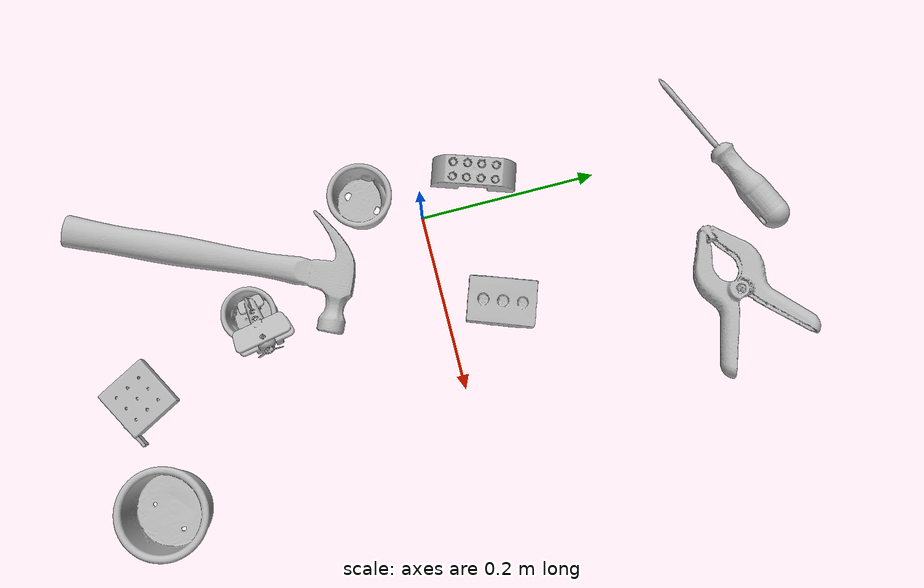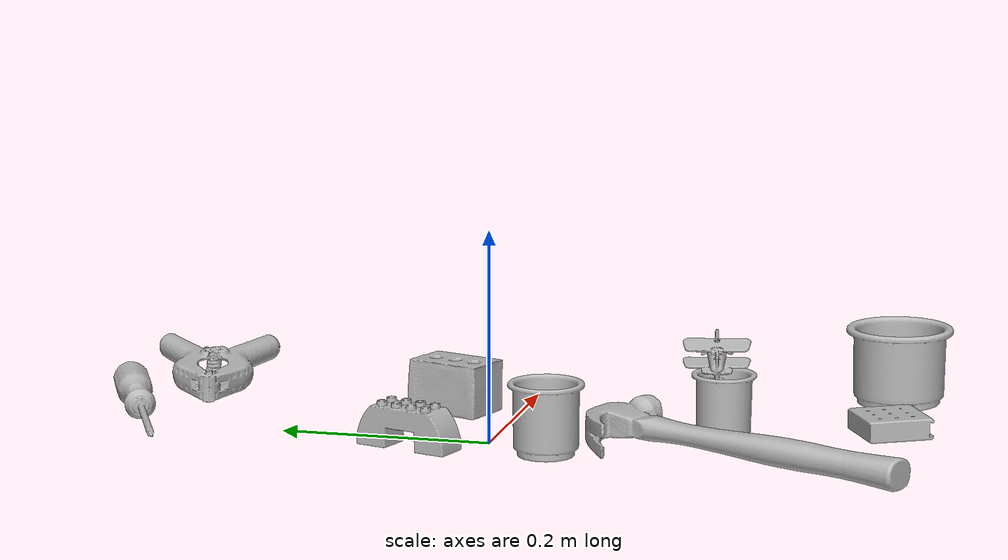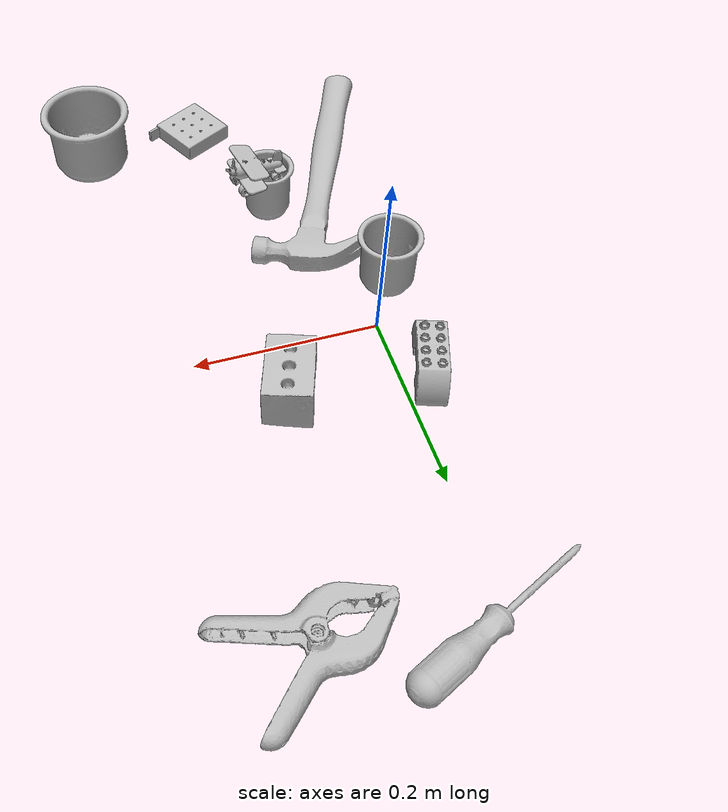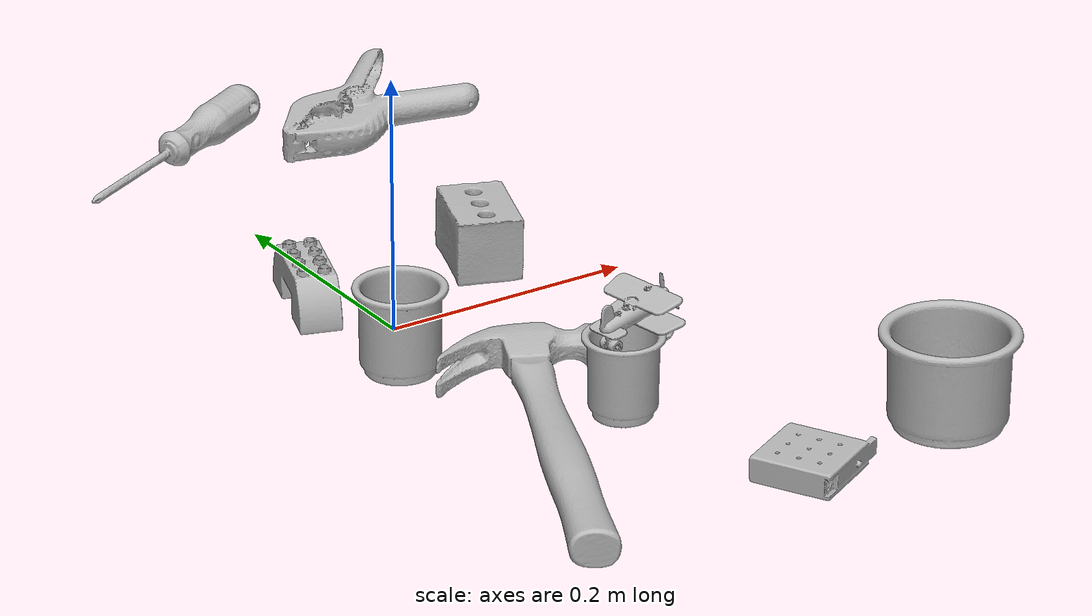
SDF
<sdf version="1.4">
  <world name="default">
    <light name="light1" type="point">
      <pose>0 0 1 0 0 0</pose>
      <diffuse>3 3 3 1</diffuse>
      <specular>3 3 3 1</specular>
    </light>
    <light name="light2" type="point">
      <pose>0 0.5 2 0 0 0</pose>
      <diffuse>1 1 1 1</diffuse>
      <specular>1 1 1 1</specular>
    </light>
    <light name="light3" type="point">
      <pose>0 0.5 2 0 0 0</pose>
      <diffuse>3 3 3 1</diffuse>
      <specular>3 3 3 1</specular>
    </light>
    <scene>
      <ambient>0.7 0.7 0.7</ambient>
    </scene>
    <model name="cup1">
      <link name="link_cup1">
        <collision name="default">
          <geometry>
            <mesh>
              <uri>model://j_cups/collision_meshes/collision.obj</uri>
              <scale>1.0 1.0 1.0</scale>
            </mesh>
          </geometry>
          <surface>
            <friction>
              <ode>
                <mu>0.5</mu>
                <mu2>0.5</mu2>
              </ode>
            </friction>
          <contact>
        <ode>
            <max_vel>0</max_vel>
            <min_depth>0.0001</min_depth>
            <kp>1e8</kp>
        </ode>
    </contact></surface>
        </collision>
        <visual name="default">
          <geometry>
            <mesh>
              <uri>model://j_cups/visual_meshes/visual.dae</uri>
              <scale>1.0 1.0 1.0</scale>
            </mesh>
          </geometry>
        </visual>
        <inertial>
          <mass>0.1112113818526268</mass>
          <pose>0.0006164852529764175 0.0005398975918069482 -0.0013479019980877638 0.030303955005909274 0.03757984422505388 0.4386955526072484</pose>
          <inertia>
            <ixx>0.00016329347</ixx>
            <iyy>0.00016499148</iyy>
            <izz>0.00018824349</izz>
            <ixy>0</ixy>
            <ixz>0</ixz>
            <iyz>0</iyz>
          </inertia>
        </inertial>
      </link>
      <pose>0.2478853464126587 -0.3480710983276367 0.03798900172114372 4.541686929315782e-09 2.9012885300456122e-08 0.8235935755654075</pose>
    </model>
    <model name="cup2">
      <link name="link_cup2">
        <collision name="default">
          <geometry>
            <mesh>
              <uri>model://b_cups/collision_meshes/collision.obj</uri>
              <scale>1.0 1.0 1.0</scale>
            </mesh>
          </geometry>
          <surface>
            <friction>
              <ode>
                <mu>0.5</mu>
                <mu2>0.5</mu2>
              </ode>
            </friction>
          <contact>
        <ode>
            <max_vel>0</max_vel>
            <min_depth>0.0001</min_depth>
            <kp>1e8</kp>
        </ode>
    </contact></surface>
        </collision>
        <visual name="default">
          <geometry>
            <mesh>
              <uri>model://b_cups/visual_meshes/visual.dae</uri>
              <scale>1.0 1.0 1.0</scale>
            </mesh>
          </geometry>
        </visual>
        <inertial>
          <mass>0.040588438510894775</mass>
          <pose>0.0005182006862014532 0.001805859268642962 -0.001338181202299893 0.11356319114734177 0.03872522211554688 -0.34569586720892936</pose>
          <inertia>
            <ixx>2.6567977e-05</ixx>
            <iyy>2.6063572e-05</iyy>
            <izz>2.235645e-05</izz>
            <ixy>0</ixy>
            <ixz>0</ixz>
            <iyz>0</iyz>
          </inertia>
        </inertial>
      </link>
      <pose>0.06315658241510391 -0.20864494144916534 0.031996700912714005 -0.00760354493351192 -0.003974744211901285 1.9215917983697615</pose>
    </model>
    <model name="cup3">
      <link name="link_cup3">
        <collision name="default">
          <geometry>
            <mesh>
              <uri>model://d_cups/collision_meshes/collision.obj</uri>
              <scale>1.0 1.0 1.0</scale>
            </mesh>
          </geometry>
          <surface>
            <friction>
              <ode>
                <mu>0.5</mu>
                <mu2>0.5</mu2>
              </ode>
            </friction>
          <contact>
        <ode>
            <max_vel>0</max_vel>
            <min_depth>0.0001</min_depth>
            <kp>1e8</kp>
        </ode>
    </contact></surface>
        </collision>
        <visual name="default">
          <geometry>
            <mesh>
              <uri>model://d_cups/visual_meshes/visual.dae</uri>
              <scale>1.0 1.0 1.0</scale>
            </mesh>
          </geometry>
        </visual>
        <inertial>
          <mass>0.030152590945363045</mass>
          <pose>0.000806804746389389 0.0019117394695058465 -0.0022666517179459333 0.2401234305416289 -0.2470973002062907 0.5942515272324471</pose>
          <inertia>
            <ixx>2.5244808e-05</ixx>
            <iyy>2.517175e-05</iyy>
            <izz>2.2850849e-05</izz>
            <ixy>0</ixy>
            <ixz>0</ixz>
            <iyz>0</iyz>
          </inertia>
        </inertial>
      </link>
      <pose>-0.03216272592544556 -0.06137949973344803 0.034659020602703094 -2.8213408755051223e-07 -4.93713215379134e-07 0.2870491694701446</pose>
    </model>
    <model name="toy1">
      <link name="link_toy1">
        <collision name="default">
          <geometry>
            <mesh>
              <uri>model://e_lego_duplo/collision_meshes/collision.obj</uri>
              <scale>1.0 1.0 1.0</scale>
            </mesh>
          </geometry>
          <surface>
            <friction>
              <ode>
                <mu>0.5</mu>
                <mu2>0.5</mu2>
              </ode>
            </friction>
          <contact>
        <ode>
            <max_vel>0</max_vel>
            <min_depth>0.0001</min_depth>
            <kp>1e8</kp>
        </ode>
    </contact></surface>
        </collision>
        <visual name="default">
          <geometry>
            <mesh>
              <uri>model://e_lego_duplo/visual_meshes/visual.dae</uri>
              <scale>1.0 1.0 1.0</scale>
            </mesh>
          </geometry>
        </visual>
        <inertial>
          <mass>0.09282131493091583</mass>
          <pose>0.0003256045747548342 0.00023485456767957658 0.0019521460635587573 -0.022567664257634346 -6.825452093688492e-05 -0.007625138047361518</pose>
          <inertia>
            <ixx>1.9356308e-05</ixx>
            <iyy>7.944328e-05</iyy>
            <izz>7.736177e-05</izz>
            <ixy>0</ixy>
            <ixz>0</ixz>
            <iyz>0</iyz>
          </inertia>
        </inertial>
      </link>
      <pose>-0.03249068558216095 0.06861934065818787 0.02180902287364006 1.1851861458391457e-06 -2.7199909549368135e-07 1.2509030920300228</pose>
    </model>
    <model name="toy2">
      <link name="link_toy2">
        <collision name="default">
          <geometry>
            <mesh>
              <uri>model://nine_hole_peg_test/collision_meshes/collision.obj</uri>
              <scale>0.5 0.5 0.5</scale>
            </mesh>
          </geometry>
          <surface>
            <friction>
              <ode>
                <mu>0.5</mu>
                <mu2>0.5</mu2>
              </ode>
            </friction>
          <contact>
        <ode>
            <max_vel>0</max_vel>
            <min_depth>0.0001</min_depth>
            <kp>1e8</kp>
        </ode>
    </contact></surface>
        </collision>
        <visual name="default">
          <geometry>
            <mesh>
              <uri>model://nine_hole_peg_test/visual_meshes/visual.dae</uri>
              <scale>0.5 0.5 0.5</scale>
            </mesh>
          </geometry>
        </visual>
        <inertial>
          <mass>0.0661587193608284</mass>
          <pose>-0.002308693015947938 -0.0048238071613013744 1.3230345757619943e-05 -0.0014666794270044752 0.0007194176174711586 -0.6342418340283942</pose>
          <inertia>
            <ixx>2.5862508e-05</ixx>
            <iyy>2.4147552e-05</iyy>
            <izz>4.531874e-05</izz>
            <ixy>0</ixy>
            <ixz>0</ixz>
            <iyz>0</iyz>
          </inertia>
        </inertial>
      </link>
      <pose>0.12527355551719666 -0.35706302523612976 0.010385501198470592 -1.2988130883295756e-10 -2.1635589448248487e-09 -1.0784319972676775</pose>
    </model>
    <model name="toy3">
      <link name="link_toy3">
        <collision name="default">
          <geometry>
            <mesh>
              <uri>model://foam_brick/collision_meshes/collision.obj</uri>
              <scale>1.0 1.0 1.0</scale>
            </mesh>
          </geometry>
          <surface>
            <friction>
              <ode>
                <mu>0.5</mu>
                <mu2>0.5</mu2>
              </ode>
            </friction>
          <contact>
        <ode>
            <max_vel>0</max_vel>
            <min_depth>0.0001</min_depth>
            <kp>1e8</kp>
        </ode>
    </contact></surface>
        </collision>
        <visual name="default">
          <geometry>
            <mesh>
              <uri>model://foam_brick/visual_meshes/visual.dae</uri>
              <scale>1.0 1.0 1.0</scale>
            </mesh>
          </geometry>
        </visual>
        <inertial>
          <mass>0.15239986777305603</mass>
          <pose>-0.00025224717683158815 0.0003458431747276336 -0.00025321010616607964 -0.29401565585717926 0.017274441097588973 -0.0007449887293440311</pose>
          <inertia>
            <ixx>6.6571105e-05</ixx>
            <iyy>0.00010628419</iyy>
            <izz>0.00010763494</izz>
            <ixy>0</ixy>
            <ixz>0</ixz>
            <iyz>0</iyz>
          </inertia>
        </inertial>
      </link>
      <pose>0.11590496450662613 0.06210862100124359 0.025922799482941628 0.013416807894844765 0.004152972975029174 1.2260294278961563</pose>
    </model>
    <model name="toy4">
      <link name="link_toy4">
        <collision name="default">
          <geometry>
            <mesh>
              <uri>model://a_toy_airplane/collision_meshes/collision.obj</uri>
              <scale>0.25 0.25 0.25</scale>
            </mesh>
          </geometry>
          <surface>
            <friction>
              <ode>
                <mu>0.5</mu>
                <mu2>0.5</mu2>
              </ode>
            </friction>
          <contact>
        <ode>
            <max_vel>0</max_vel>
            <min_depth>0.0001</min_depth>
            <kp>1e8</kp>
        </ode>
    </contact></surface>
        </collision>
        <visual name="default">
          <geometry>
            <mesh>
              <uri>model://a_toy_airplane/visual_meshes/visual.dae</uri>
              <scale>0.25 0.25 0.25</scale>
            </mesh>
          </geometry>
        </visual>
        <inertial>
          <mass>0.01630575954914093</mass>
          <pose>0.006291272584348917 -0.0009268299327231944 -0.0002990612993016839 -0.012016942866631759 -0.1466350865210375 0.004149072887705313</pose>
          <inertia>
            <ixx>3.7008767e-06</ixx>
            <iyy>5.392928e-06</iyy>
            <izz>6.314456e-06</izz>
            <ixy>0</ixy>
            <ixz>0</ixz>
            <iyz>0</iyz>
          </inertia>
        </inertial>
      </link>
      <pose>0.07762712985277176 -0.19810770452022552 0.07295171916484833 -0.00480059062545945 0.002818581319625586 0.17825611317283907</pose>
    </model>
    <model name="hardware1">
      <link name="link_hardware1">
        <collision name="default">
          <geometry>
            <mesh>
              <uri>model://phillips_screwdriver/collision_meshes/collision.obj</uri>
              <scale>1.0 1.0 1.0</scale>
            </mesh>
          </geometry>
          <surface>
            <friction>
              <ode>
                <mu>0.5</mu>
                <mu2>0.5</mu2>
              </ode>
            </friction>
          <contact>
        <ode>
            <max_vel>0</max_vel>
            <min_depth>0.0001</min_depth>
            <kp>1e8</kp>
        </ode>
    </contact></surface>
        </collision>
        <visual name="default">
          <geometry>
            <mesh>
              <uri>model://phillips_screwdriver/visual_meshes/visual.dae</uri>
              <scale>1.0 1.0 1.0</scale>
            </mesh>
          </geometry>
        </visual>
        <inertial>
          <mass>0.05757145583629608</mass>
          <pose>-0.04777182266116142 0.001036230125464499 -0.000455554953077808 -0.1572215307256514 0.005850991069928943 -0.0021567397451199392</pose>
          <inertia>
            <ixx>6.764056e-06</ixx>
            <iyy>8.480946e-05</iyy>
            <izz>8.4881525e-05</izz>
            <ixy>0</ixy>
            <ixz>0</ixz>
            <iyz>0</iyz>
          </inertia>
        </inertial>
      </link>
      <pose>0.013710543513298035 0.347204327583313 0.01540965586900711 0.06561090251143814 0.03756822249594493 -2.704336236430572</pose>
    </model>
    <model name="hardware2">
      <link name="link_hardware2">
        <collision name="default">
          <geometry>
            <mesh>
              <uri>model://hammer/collision_meshes/collision.obj</uri>
              <scale>1.0 1.0 1.0</scale>
            </mesh>
          </geometry>
          <surface>
            <friction>
              <ode>
                <mu>0.5</mu>
                <mu2>0.5</mu2>
              </ode>
            </friction>
          <contact>
        <ode>
            <max_vel>0</max_vel>
            <min_depth>0.0001</min_depth>
            <kp>1e8</kp>
        </ode>
    </contact></surface>
        </collision>
        <visual name="default">
          <geometry>
            <mesh>
              <uri>model://hammer/visual_meshes/visual.dae</uri>
              <scale>1.0 1.0 1.0</scale>
            </mesh>
          </geometry>
        </visual>
        <inertial>
          <mass>0.19043192267417908</mass>
          <pose>0.00941577646881342 -0.011892358772456646 -0.0001235063245985657 0.023155672419862355 -0.004792164441448863 -0.012760315407460211</pose>
          <inertia>
            <ixx>8.15718e-05</ixx>
            <iyy>0.0022103586</iyy>
            <izz>0.002273686</izz>
            <ixy>0</ixy>
            <ixz>0</ixz>
            <iyz>0</iyz>
          </inertia>
        </inertial>
      </link>
      <pose>-0.02111121639609337 -0.22673164308071136 0.01626737229526043 -0.005199055619079668 -0.001380227323145468 1.146760083480004</pose>
    </model>
    <model name="hardware3">
      <link name="link_hardware3">
        <collision name="default">
          <geometry>
            <mesh>
              <uri>model://large_clamp/collision_meshes/collision.obj</uri>
              <scale>1.0 1.0 1.0</scale>
            </mesh>
          </geometry>
          <surface>
            <friction>
              <ode>
                <mu>0.5</mu>
                <mu2>0.5</mu2>
              </ode>
            </friction>
          <contact>
        <ode>
            <max_vel>0</max_vel>
            <min_depth>0.0001</min_depth>
            <kp>1e8</kp>
        </ode>
    </contact></surface>
        </collision>
        <visual name="default">
          <geometry>
            <mesh>
              <uri>model://large_clamp/visual_meshes/visual.dae</uri>
              <scale>1.0 1.0 1.0</scale>
            </mesh>
          </geometry>
        </visual>
        <inertial>
          <mass>0.18636001646518707</mass>
          <pose>0.006369354669004679 0.0003585688828025013 -0.0001839799078879878 -0.0021330740505354343 0.009671591251539349 0.02663317297682702</pose>
          <inertia>
            <ixx>0.0001644205</ixx>
            <iyy>0.00031224336</iyy>
            <izz>0.00045169977</izz>
            <ixy>0</ixy>
            <ixz>0</ixz>
            <iyz>0</iyz>
          </inertia>
        </inertial>
      </link>
      <pose>0.16885972023010254 0.3228757977485657 0.018504055216908455 -0.012189206675722937 0.04694747576958435 -2.9156172331195913</pose>
    </model>
  <physics type="ode">
      <max_contacts>50</max_contacts>
      <ode>
        <solver>
          <type>quick</type>
          <iters>75</iters>
        </solver>
        <constraints>
          <contact_max_correcting_vel>0</contact_max_correcting_vel>
          <contact_surface_layer>0</contact_surface_layer>
        </constraints>
      </ode>
    </physics></world>
</sdf>
